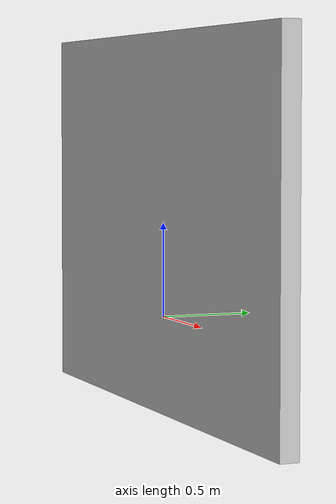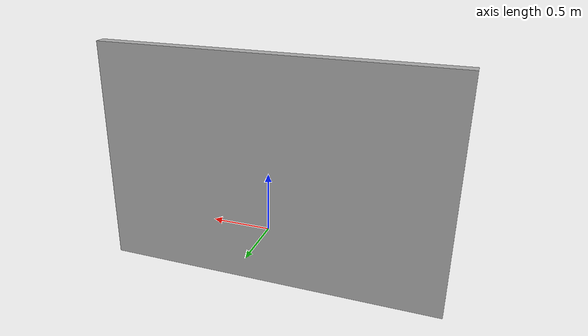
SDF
<?xml version='1.0'?>
<sdf version="1.4">
  <model name="hvlscreen">
    <pose>0 0 0.5 0 0 0</pose>
    <static>true</static>
    <link name="link">
      <inertial>
        <mass>1.0</mass>
      </inertial>
      <collision name="collision">
        <geometry>
          <box>
            <size>3 0.1 2</size>
          </box>
        </geometry>
      </collision>
      <visual name="visual">
        <geometry>
          <box>
            <size>3 0.1 2</size>
          </box>
        </geometry>
        <material>
          <script>
            <uri>model://hvlscreen/materials/scripts</uri>
            <uri>model://hvlscreen/materials/textures</uri>
            <name>hvlscreenMat/Diffuse</name>
          </script>
        </material>
      </visual>
    </link>
  </model>
</sdf>
